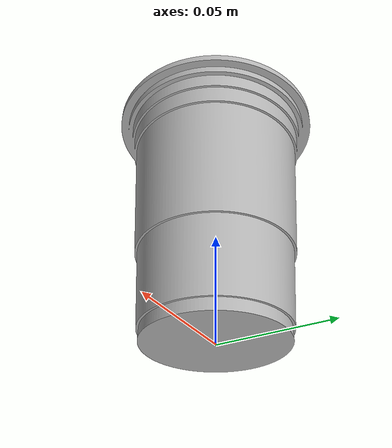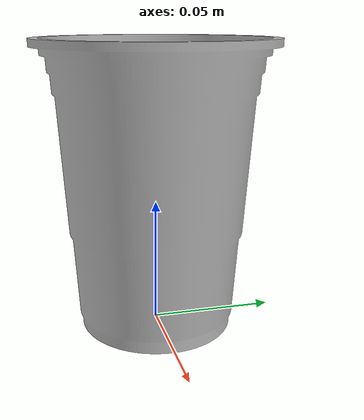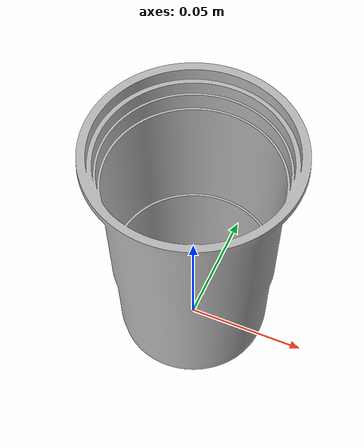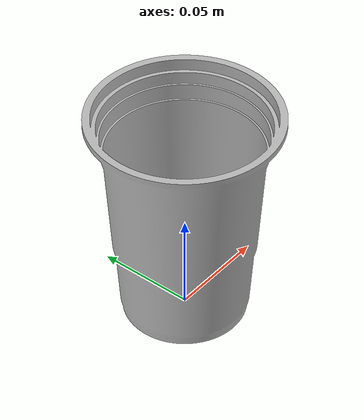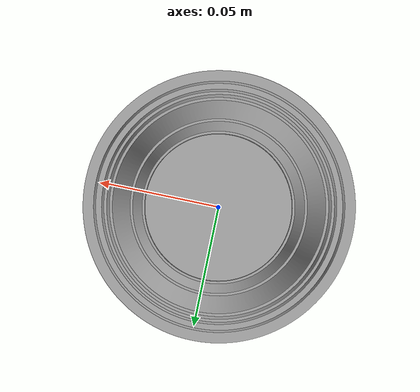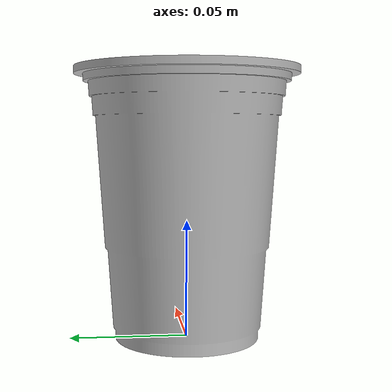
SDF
<?xml version="1.0"?>
<sdf version="1.6">
  <model name="cup_red">
    <static>false</static>
    <allow_auto_disable>true</allow_auto_disable>

    <plugin filename="gz-sim-pose-publisher-system" name="gz::sim::systems::PosePublisher">
      <publish_link_pose>false</publish_link_pose>
      <publish_model_pose>true</publish_model_pose>
      <update_frequency>10.0</update_frequency>
    </plugin>

    <link name="link">
      <inertial>
        <mass>0.007</mass>
        <pose>0 0 0.05725 0 0 0</pose>
        <inertia>
          <ixx>1.1513e-5</ixx>
          <ixy>0</ixy>
          <ixz>0</ixz>
          <iyy>1.1513e-5</iyy>
          <iyz>0</iyz>
          <izz>7.7315e-6</izz>
        </inertia>
      </inertial>
      <linear_damping>0.3</linear_damping>
      <angular_damping>0.3</angular_damping>
      <visual name="visual">
        <geometry>
          <mesh>
            <uri>model://cup_red/meshes/cup_red.obj</uri>
          </mesh>
        </geometry>
      </visual>
      <collision name="collision">
        <pose>0 0 0.05725 0 0 0</pose>
        <geometry>
          <cylinder>
            <radius>0.047</radius>
            <length>0.1145</length>
          </cylinder>
        </geometry>
        <surface>
          <bounce>
            <restitution_coefficient>0.0</restitution_coefficient>
            <threshold>1e6</threshold>
          </bounce>
          <friction>
            <ode>
              <mu>0.6</mu>
              <mu2>0.6</mu2>
            </ode>
          </friction>
          <contact>
            <ode>
              <kp>1e6</kp>
              <kd>100</kd>
              <max_vel>0.01</max_vel>
              <min_depth>0.001</min_depth>
            </ode>
          </contact>
        </surface>
      </collision>
    </link>
  </model>
</sdf>
